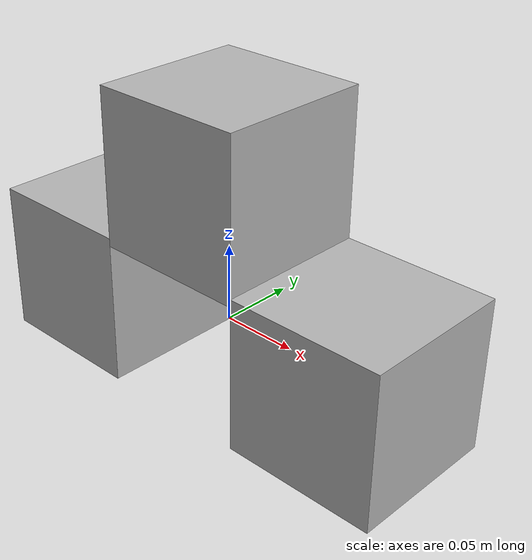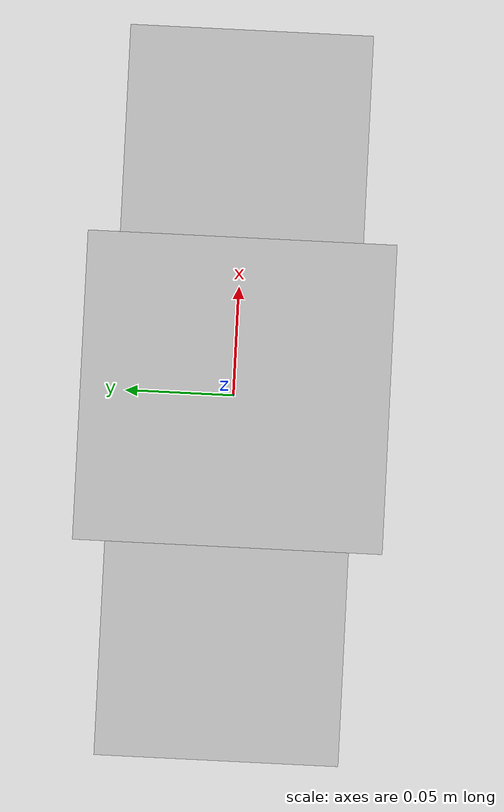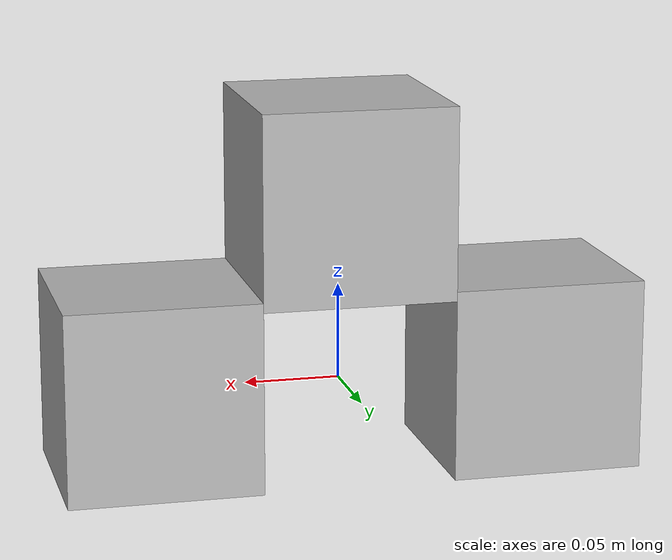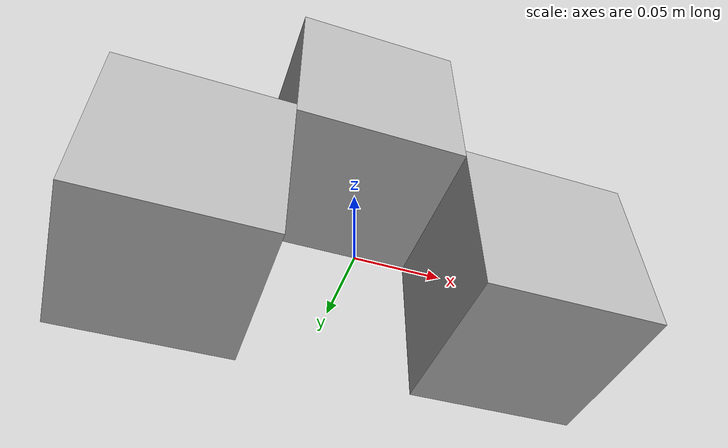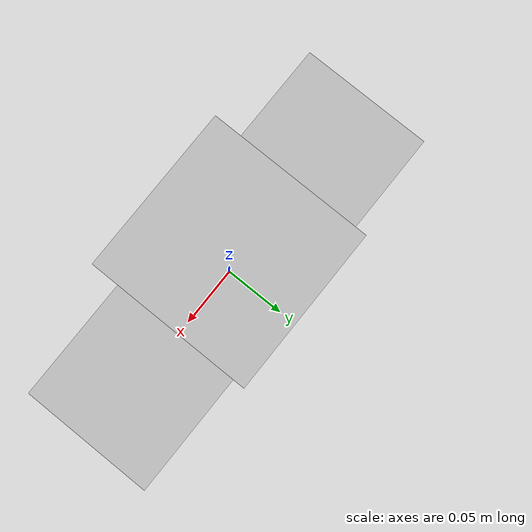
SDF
<?xml version='1.0'?>
<sdf version='1.6'>
		<model name="IJFIP">
			<self_collide>true</self_collide>
			<pose>0.0 0.0 0.0 0.0 0.0 0.0</pose>
			<!-- Start of parts of the pmodel IJFIP -->
				<!-- Start of declarations for part "IJFIP::p::1" -->
					<!-- Start of parts of part "IJFIP::p::1" -->
					<!-- End of parts of part "IJFIP::p::1" -->

					<!-- Start of links of part "IJFIP::p::1" -->
					<!-- link full name is IJFIP::p::1::L2 -->
					<link name="1-L2">
							<pose>-0.10000000149011612 0.0 0.004999999888241291 0.0 0.0 0.0</pose>
							<inertial>
								<pose>0.0 0.0 0.0 0.0 0.0 0.0</pose>
								<inertia>
									<ixx>1.0</ixx>
									<ixy>0.0</ixy>
									<ixz>0.0</ixz>
									<iyy>1.0</iyy>
									<iyz>0.0</iyz>
									<izz>1.0</izz>
								</inertia>
								<mass>1.0</mass>
							</inertial>
							<!-- body full name is IJFIP::p::1::L2::B -->
							<collision name="1--B">
								<laser_retro>0.0</laser_retro>
								<pose>0.0 0.0 0.0 0.0 0.0 0.0</pose>
								<geometry>
									<box>
										<size>0.10000000149011612 0.10000000149011612 0.10000000149011612</size>
									</box>
								</geometry>
								<surface>
									<bounce>
										<restitution_coefficient>0.0</restitution_coefficient>
										<threshold>100000.0</threshold>
									</bounce>
									<friction>
										<ode>
											<mu>1.0</mu>
											<mu2>1.0</mu2>
											<fdir1>0.0 0.0 0.0</fdir1>
											<slip1>0.0</slip1>
											<slip2>0.0</slip2>
										</ode>
										<torsional>
											<coefficient>1.0</coefficient>
											<surface_radius>0.0</surface_radius>
										</torsional>
									</friction>
								</surface>
							</collision>
							<visual name="1--B">
								<laser_retro>0.0</laser_retro>
								<pose>0.0 0.0 0.0 0.0 0.0 0.0</pose>
								<geometry>
									<box>
										<size>0.10000000149011612 0.10000000149011612 0.10000000149011612</size>
									</box>
								</geometry>
								<surface>
									<bounce>
										<restitution_coefficient>0.0</restitution_coefficient>
										<threshold>100000.0</threshold>
									</bounce>
									<friction>
										<ode>
											<mu>1.0</mu>
											<mu2>1.0</mu2>
											<fdir1>0.0 0.0 0.0</fdir1>
											<slip1>0.0</slip1>
											<slip2>0.0</slip2>
										</ode>
										<torsional>
											<coefficient>1.0</coefficient>
											<surface_radius>0.0</surface_radius>
										</torsional>
									</friction>
								</surface>
							</visual>
					</link>
					<!-- End of links of part "IJFIP::p::1" -->

					<!-- Start of joints of part "IJFIP::p::1" -->
					<!-- Full name of joint: IJFIP::p::1::L2::R from IJFIP::p::1::L2 to IJFIP::L1-->
					<joint name="3-R" type="prismatic">
						<pose>-0.10000000149011612 0.0 -0.09500000160187483 0.0 -0.0 0.0</pose>
						<parent>1-L2</parent>
						<child>2-L1</child>
						<!-- WARNING: The SDF generator relies on annotations of the joint 3-R to specify in SDF aspects of the joint that are
							 accounted for in the equations. -->
						<axis>
							<xyz>0 0 1</xyz>
						</axis>
					</joint>
					<!-- End of joints of part "IJFIP::p::1" -->

					<!-- Start of fixed connections of part "IJFIP::p::1" -->

					<!-- End of fixed connections of part "IJFIP::p::1" -->
				<!-- End of declarations for part "IJFIP::p::1" -->
				<!-- Start of declarations for part "IJFIP::p::2" -->
					<!-- Start of parts of part "IJFIP::p::2" -->
					<!-- End of parts of part "IJFIP::p::2" -->

					<!-- Start of links of part "IJFIP::p::2" -->
					<!-- link full name is IJFIP::p::2::L2 -->
					<link name="4-L2">
							<pose>0.10000000149011612 0.0 0.004999999888241291 0.0 0.0 0.0</pose>
							<inertial>
								<pose>0.0 0.0 0.0 0.0 0.0 0.0</pose>
								<inertia>
									<ixx>1.0</ixx>
									<ixy>0.0</ixy>
									<ixz>0.0</ixz>
									<iyy>1.0</iyy>
									<iyz>0.0</iyz>
									<izz>1.0</izz>
								</inertia>
								<mass>1.0</mass>
							</inertial>
							<!-- body full name is IJFIP::p::2::L2::B -->
							<collision name="2--B">
								<laser_retro>0.0</laser_retro>
								<pose>0.0 0.0 0.0 0.0 0.0 0.0</pose>
								<geometry>
									<box>
										<size>0.10000000149011612 0.10000000149011612 0.10000000149011612</size>
									</box>
								</geometry>
								<surface>
									<bounce>
										<restitution_coefficient>0.0</restitution_coefficient>
										<threshold>100000.0</threshold>
									</bounce>
									<friction>
										<ode>
											<mu>1.0</mu>
											<mu2>1.0</mu2>
											<fdir1>0.0 0.0 0.0</fdir1>
											<slip1>0.0</slip1>
											<slip2>0.0</slip2>
										</ode>
										<torsional>
											<coefficient>1.0</coefficient>
											<surface_radius>0.0</surface_radius>
										</torsional>
									</friction>
								</surface>
							</collision>
							<visual name="2--B">
								<laser_retro>0.0</laser_retro>
								<pose>0.0 0.0 0.0 0.0 0.0 0.0</pose>
								<geometry>
									<box>
										<size>0.10000000149011612 0.10000000149011612 0.10000000149011612</size>
									</box>
								</geometry>
								<surface>
									<bounce>
										<restitution_coefficient>0.0</restitution_coefficient>
										<threshold>100000.0</threshold>
									</bounce>
									<friction>
										<ode>
											<mu>1.0</mu>
											<mu2>1.0</mu2>
											<fdir1>0.0 0.0 0.0</fdir1>
											<slip1>0.0</slip1>
											<slip2>0.0</slip2>
										</ode>
										<torsional>
											<coefficient>1.0</coefficient>
											<surface_radius>0.0</surface_radius>
										</torsional>
									</friction>
								</surface>
							</visual>
					</link>
					<!-- End of links of part "IJFIP::p::2" -->

					<!-- Start of joints of part "IJFIP::p::2" -->
					<!-- Full name of joint: IJFIP::p::2::L2::R from IJFIP::p::2::L2 to IJFIP::L1-->
					<joint name="5-R" type="prismatic">
						<pose>0.10000000149011612 0.0 -0.09500000160187483 0.0 -0.0 0.0</pose>
						<parent>4-L2</parent>
						<child>2-L1</child>
						<!-- WARNING: The SDF generator relies on annotations of the joint 5-R to specify in SDF aspects of the joint that are
							 accounted for in the equations. -->
						<axis>
							<xyz>0 0 1</xyz>
						</axis>
					</joint>
					<!-- End of joints of part "IJFIP::p::2" -->

					<!-- Start of fixed connections of part "IJFIP::p::2" -->

					<!-- End of fixed connections of part "IJFIP::p::2" -->
				<!-- End of declarations for part "IJFIP::p::2" -->
			<!-- End of parts of the pmodel IJFIP -->

			<!-- Start of links of the pmodel IJFIP -->
			<!-- link full name is IJFIP::L1 -->
			<link name="2-L1">
					<pose>0.0 0.0 0.10000000149011612 0.0 0.0 0.0</pose>
					<inertial>
						<pose>0.0 0.0 0.0 0.0 0.0 0.0</pose>
						<inertia>
							<ixx>1.0</ixx>
							<ixy>0.0</ixy>
							<ixz>0.0</ixz>
							<iyy>1.0</iyy>
							<iyz>0.0</iyz>
							<izz>1.0</izz>
						</inertia>
						<mass>1.0</mass>
					</inertial>
					<!-- body full name is IJFIP::L1::B -->
					<collision name="3--B">
						<laser_retro>0.0</laser_retro>
						<pose>0.0 0.0 0.0 0.0 0.0 0.0</pose>
						<geometry>
							<box>
								<size>0.10000000149011612 0.10000000149011612 0.10000000149011612</size>
							</box>
						</geometry>
						<surface>
							<bounce>
								<restitution_coefficient>0.0</restitution_coefficient>
								<threshold>100000.0</threshold>
							</bounce>
							<friction>
								<ode>
									<mu>1.0</mu>
									<mu2>1.0</mu2>
									<fdir1>0.0 0.0 0.0</fdir1>
									<slip1>0.0</slip1>
									<slip2>0.0</slip2>
								</ode>
								<torsional>
									<coefficient>1.0</coefficient>
									<surface_radius>0.0</surface_radius>
								</torsional>
							</friction>
						</surface>
					</collision>
					<visual name="3--B">
						<laser_retro>0.0</laser_retro>
						<pose>0.0 0.0 0.0 0.0 0.0 0.0</pose>
						<geometry>
							<box>
								<size>0.10000000149011612 0.10000000149011612 0.10000000149011612</size>
							</box>
						</geometry>
						<surface>
							<bounce>
								<restitution_coefficient>0.0</restitution_coefficient>
								<threshold>100000.0</threshold>
							</bounce>
							<friction>
								<ode>
									<mu>1.0</mu>
									<mu2>1.0</mu2>
									<fdir1>0.0 0.0 0.0</fdir1>
									<slip1>0.0</slip1>
									<slip2>0.0</slip2>
								</ode>
								<torsional>
									<coefficient>1.0</coefficient>
									<surface_radius>0.0</surface_radius>
								</torsional>
							</friction>
						</surface>
					</visual>
			</link>
			<!-- End of links of the pmodel IJFIP -->

			<!-- Start of joints of the pmodel IJFIP -->
			<!-- End of joints of the pmodel IJFIP -->

			<!-- Start of fixed connections of the pmodel IJFIP -->
			<!-- End of fixed connections of the pmodel IJFIP -->
		</model>
</sdf>
